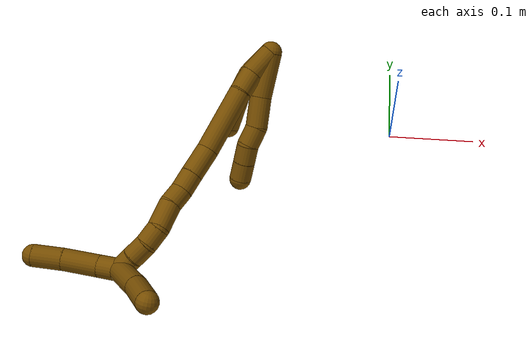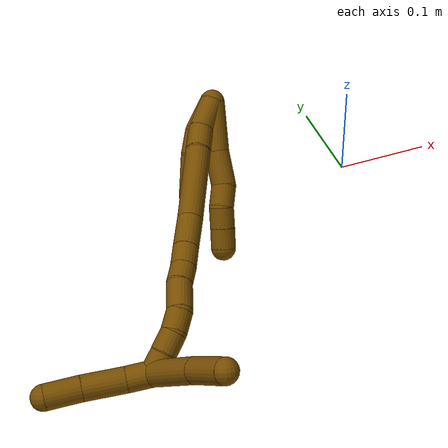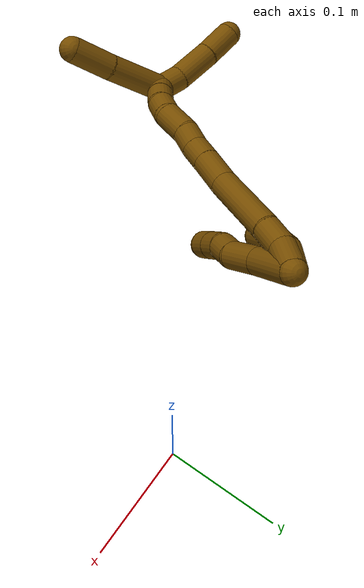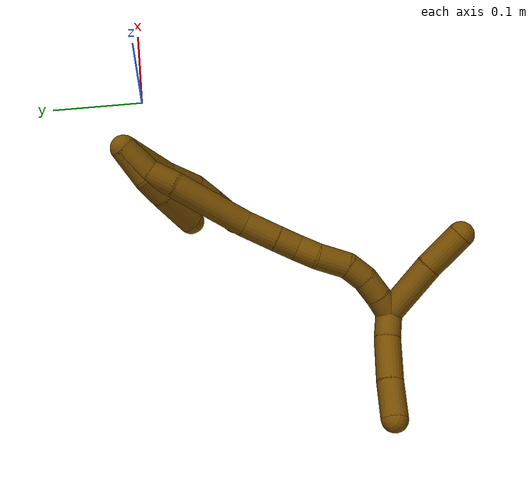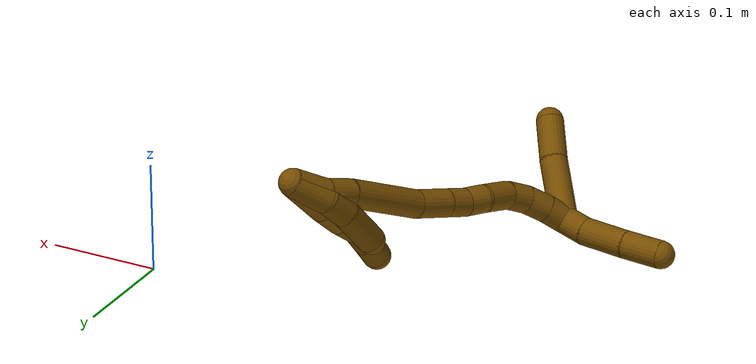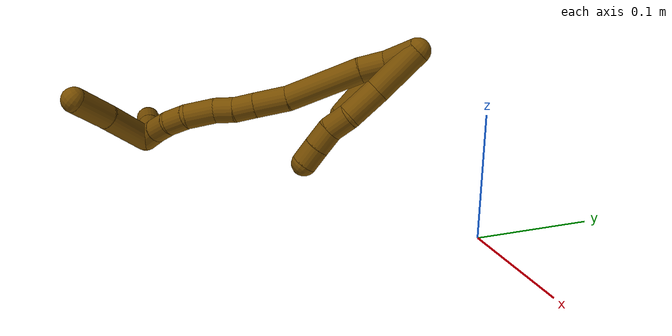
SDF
<sdf version="1.7">
 <world name="default">
  <model name="12">
   <static>0</static>
   <link name="12">
    <collision name="collision-cylinder-e_1_2_8">
     <pose>-0.001415 -0.000154 0.025509 0.006042 -0.055421 -0.000167</pose>
     <geometry><cylinder><radius>0.0125</radius><length>0.051097</length></cylinder></geometry>
     <surface>
      <friction><ode><mu>1.16</mu><mu2>1.16</mu2><slip1>0</slip1><slip2>0</slip2></ode></friction>
      <contact><ode><kp>1e+06</kp><kd>1</kd><max_vel>0</max_vel><min_depth>0.001</min_depth></ode></contact>
     </surface>
    </collision>
    <visual name="visual-cylinder-e_1_2_8">
     <pose>-0.001415 -0.000154 0.025509 0.006042 -0.055421 -0.000167</pose>
     <geometry><cylinder><radius>0.0125</radius><length>0.051097</length></cylinder></geometry>
     <material><ambient>0.466667 0.301961 0 1</ambient></material>
    </visual>
    <collision name="collision-cylinder-e_2_8_9">
     <pose>-0.005591 0.000959 0.06827 -0.073331 -0.158273 0.005818</pose>
     <geometry><cylinder><radius>0.0125</radius><length>0.035035</length></cylinder></geometry>
     <surface>
      <friction><ode><mu>1.16</mu><mu2>1.16</mu2><slip1>0</slip1><slip2>0</slip2></ode></friction>
      <contact><ode><kp>1e+06</kp><kd>1</kd><max_vel>0</max_vel><min_depth>0.001</min_depth></ode></contact>
     </surface>
    </collision>
    <visual name="visual-cylinder-e_2_8_9">
     <pose>-0.005591 0.000959 0.06827 -0.073331 -0.158273 0.005818</pose>
     <geometry><cylinder><radius>0.0125</radius><length>0.035035</length></cylinder></geometry>
     <material><ambient>0.466667 0.301961 0 1</ambient></material>
    </visual>
    <collision name="collision-cylinder-e_3_9_10">
     <pose>-0.009315 -0.000381 0.096357 0.236164 -0.086132 -0.010224</pose>
     <geometry><cylinder><radius>0.0125</radius><length>0.02237</length></cylinder></geometry>
     <surface>
      <friction><ode><mu>1.16</mu><mu2>1.16</mu2><slip1>0</slip1><slip2>0</slip2></ode></friction>
      <contact><ode><kp>1e+06</kp><kd>1</kd><max_vel>0</max_vel><min_depth>0.001</min_depth></ode></contact>
     </surface>
    </collision>
    <visual name="visual-cylinder-e_3_9_10">
     <pose>-0.009315 -0.000381 0.096357 0.236164 -0.086132 -0.010224</pose>
     <geometry><cylinder><radius>0.0125</radius><length>0.02237</length></cylinder></geometry>
     <material><ambient>0.466667 0.301961 0 1</ambient></material>
    </visual>
    <collision name="collision-cylinder-e_4_10_11">
     <pose>-0.009389 -0.002794 0.117626 -0.018575 0.084896 -0.000789</pose>
     <geometry><cylinder><radius>0.0125</radius><length>0.02095</length></cylinder></geometry>
     <surface>
      <friction><ode><mu>1.16</mu><mu2>1.16</mu2><slip1>0</slip1><slip2>0</slip2></ode></friction>
      <contact><ode><kp>1e+06</kp><kd>1</kd><max_vel>0</max_vel><min_depth>0.001</min_depth></ode></contact>
     </surface>
    </collision>
    <visual name="visual-cylinder-e_4_10_11">
     <pose>-0.009389 -0.002794 0.117626 -0.018575 0.084896 -0.000789</pose>
     <geometry><cylinder><radius>0.0125</radius><length>0.02095</length></cylinder></geometry>
     <material><ambient>0.466667 0.301961 0 1</ambient></material>
    </visual>
    <collision name="collision-cylinder-e_5_11_6">
     <pose>-0.007417 -0.002456 0.138277 -0.014154 0.10565 -0.000748</pose>
     <geometry><cylinder><radius>0.0125</radius><length>0.020548</length></cylinder></geometry>
     <surface>
      <friction><ode><mu>1.16</mu><mu2>1.16</mu2><slip1>0</slip1><slip2>0</slip2></ode></friction>
      <contact><ode><kp>1e+06</kp><kd>1</kd><max_vel>0</max_vel><min_depth>0.001</min_depth></ode></contact>
     </surface>
    </collision>
    <visual name="visual-cylinder-e_5_11_6">
     <pose>-0.007417 -0.002456 0.138277 -0.014154 0.10565 -0.000748</pose>
     <geometry><cylinder><radius>0.0125</radius><length>0.020548</length></cylinder></geometry>
     <material><ambient>0.466667 0.301961 0 1</ambient></material>
    </visual>
    <collision name="collision-cylinder-e_1_2_12">
     <pose>0.000661 -0.009009 0.014698 0.54986 0.038297 0.010804</pose>
     <geometry><cylinder><radius>0.0125</radius><length>0.034504</length></cylinder></geometry>
     <surface>
      <friction><ode><mu>1.16</mu><mu2>1.16</mu2><slip1>0</slip1><slip2>0</slip2></ode></friction>
      <contact><ode><kp>1e+06</kp><kd>1</kd><max_vel>0</max_vel><min_depth>0.001</min_depth></ode></contact>
     </surface>
    </collision>
    <visual name="visual-cylinder-e_1_2_12">
     <pose>0.000661 -0.009009 0.014698 0.54986 0.038297 0.010804</pose>
     <geometry><cylinder><radius>0.0125</radius><length>0.034504</length></cylinder></geometry>
     <material><ambient>0.466667 0.301961 0 1</ambient></material>
    </visual>
    <collision name="collision-cylinder-e_2_12_13">
     <pose>0.00197 -0.020949 0.040864 0.25025 0.054748 0.006888</pose>
     <geometry><cylinder><radius>0.0125</radius><length>0.023708</length></cylinder></geometry>
     <surface>
      <friction><ode><mu>1.16</mu><mu2>1.16</mu2><slip1>0</slip1><slip2>0</slip2></ode></friction>
      <contact><ode><kp>1e+06</kp><kd>1</kd><max_vel>0</max_vel><min_depth>0.001</min_depth></ode></contact>
     </surface>
    </collision>
    <visual name="visual-cylinder-e_2_12_13">
     <pose>0.00197 -0.020949 0.040864 0.25025 0.054748 0.006888</pose>
     <geometry><cylinder><radius>0.0125</radius><length>0.023708</length></cylinder></geometry>
     <material><ambient>0.466667 0.301961 0 1</ambient></material>
    </visual>
    <collision name="collision-cylinder-e_3_13_5">
     <pose>0.004545 -0.025865 0.073042 0.095555 0.092338 0.004418</pose>
     <geometry><cylinder><radius>0.0125</radius><length>0.041787</length></cylinder></geometry>
     <surface>
      <friction><ode><mu>1.16</mu><mu2>1.16</mu2><slip1>0</slip1><slip2>0</slip2></ode></friction>
      <contact><ode><kp>1e+06</kp><kd>1</kd><max_vel>0</max_vel><min_depth>0.001</min_depth></ode></contact>
     </surface>
    </collision>
    <visual name="visual-cylinder-e_3_13_5">
     <pose>0.004545 -0.025865 0.073042 0.095555 0.092338 0.004418</pose>
     <geometry><cylinder><radius>0.0125</radius><length>0.041787</length></cylinder></geometry>
     <material><ambient>0.466667 0.301961 0 1</ambient></material>
    </visual>
    <collision name="collision-cylinder-e_1_2_14">
     <pose>-0.002028 -0.008101 0.013602 0.537132 -0.127416 -0.035111</pose>
     <geometry><cylinder><radius>0.0125</radius><length>0.031922</length></cylinder></geometry>
     <surface>
      <friction><ode><mu>1.16</mu><mu2>1.16</mu2><slip1>0</slip1><slip2>0</slip2></ode></friction>
      <contact><ode><kp>1e+06</kp><kd>1</kd><max_vel>0</max_vel><min_depth>0.001</min_depth></ode></contact>
     </surface>
    </collision>
    <visual name="visual-cylinder-e_1_2_14">
     <pose>-0.002028 -0.008101 0.013602 0.537132 -0.127416 -0.035111</pose>
     <geometry><cylinder><radius>0.0125</radius><length>0.031922</length></cylinder></geometry>
     <material><ambient>0.466667 0.301961 0 1</ambient></material>
    </visual>
    <collision name="collision-cylinder-e_2_14_15">
     <pose>-0.009545 -0.020822 0.03806 0.402388 -0.435442 -0.090179</pose>
     <geometry><cylinder><radius>0.0125</radius><length>0.026025</length></cylinder></geometry>
     <surface>
      <friction><ode><mu>1.16</mu><mu2>1.16</mu2><slip1>0</slip1><slip2>0</slip2></ode></friction>
      <contact><ode><kp>1e+06</kp><kd>1</kd><max_vel>0</max_vel><min_depth>0.001</min_depth></ode></contact>
     </surface>
    </collision>
    <visual name="visual-cylinder-e_2_14_15">
     <pose>-0.009545 -0.020822 0.03806 0.402388 -0.435442 -0.090179</pose>
     <geometry><cylinder><radius>0.0125</radius><length>0.026025</length></cylinder></geometry>
     <material><ambient>0.466667 0.301961 0 1</ambient></material>
    </visual>
    <collision name="collision-cylinder-e_3_15_16">
     <pose>-0.026897 -0.037209 0.08251 0.336924 -0.321702 -0.055176</pose>
     <geometry><cylinder><radius>0.0125</radius><length>0.07504</length></cylinder></geometry>
     <surface>
      <friction><ode><mu>1.16</mu><mu2>1.16</mu2><slip1>0</slip1><slip2>0</slip2></ode></friction>
      <contact><ode><kp>1e+06</kp><kd>1</kd><max_vel>0</max_vel><min_depth>0.001</min_depth></ode></contact>
     </surface>
    </collision>
    <visual name="visual-cylinder-e_3_15_16">
     <pose>-0.026897 -0.037209 0.08251 0.336924 -0.321702 -0.055176</pose>
     <geometry><cylinder><radius>0.0125</radius><length>0.07504</length></cylinder></geometry>
     <material><ambient>0.466667 0.301961 0 1</ambient></material>
    </visual>
    <collision name="collision-cylinder-e_4_16_17">
     <pose>-0.046134 -0.055229 0.129679 0.431597 -0.458366 -0.102187</pose>
     <geometry><cylinder><radius>0.0125</radius><length>0.033331</length></cylinder></geometry>
     <surface>
      <friction><ode><mu>1.16</mu><mu2>1.16</mu2><slip1>0</slip1><slip2>0</slip2></ode></friction>
      <contact><ode><kp>1e+06</kp><kd>1</kd><max_vel>0</max_vel><min_depth>0.001</min_depth></ode></contact>
     </surface>
    </collision>
    <visual name="visual-cylinder-e_4_16_17">
     <pose>-0.046134 -0.055229 0.129679 0.431597 -0.458366 -0.102187</pose>
     <geometry><cylinder><radius>0.0125</radius><length>0.033331</length></cylinder></geometry>
     <material><ambient>0.466667 0.301961 0 1</ambient></material>
    </visual>
    <collision name="collision-cylinder-e_5_17_18">
     <pose>-0.05826 -0.065313 0.152063 0.410316 -0.459278 -0.097209</pose>
     <geometry><cylinder><radius>0.0125</radius><length>0.021436</length></cylinder></geometry>
     <surface>
      <friction><ode><mu>1.16</mu><mu2>1.16</mu2><slip1>0</slip1><slip2>0</slip2></ode></friction>
      <contact><ode><kp>1e+06</kp><kd>1</kd><max_vel>0</max_vel><min_depth>0.001</min_depth></ode></contact>
     </surface>
    </collision>
    <visual name="visual-cylinder-e_5_17_18">
     <pose>-0.05826 -0.065313 0.152063 0.410316 -0.459278 -0.097209</pose>
     <geometry><cylinder><radius>0.0125</radius><length>0.021436</length></cylinder></geometry>
     <material><ambient>0.466667 0.301961 0 1</ambient></material>
    </visual>
    <collision name="collision-cylinder-e_6_18_19">
     <pose>-0.068414 -0.073799 0.168025 0.576865 -0.564454 -0.171647</pose>
     <geometry><cylinder><radius>0.0125</radius><length>0.020198</length></cylinder></geometry>
     <surface>
      <friction><ode><mu>1.16</mu><mu2>1.16</mu2><slip1>0</slip1><slip2>0</slip2></ode></friction>
      <contact><ode><kp>1e+06</kp><kd>1</kd><max_vel>0</max_vel><min_depth>0.001</min_depth></ode></contact>
     </surface>
    </collision>
    <visual name="visual-cylinder-e_6_18_19">
     <pose>-0.068414 -0.073799 0.168025 0.576865 -0.564454 -0.171647</pose>
     <geometry><cylinder><radius>0.0125</radius><length>0.020198</length></cylinder></geometry>
     <material><ambient>0.466667 0.301961 0 1</ambient></material>
    </visual>
    <collision name="collision-cylinder-e_7_19_20">
     <pose>-0.081632 -0.082331 0.18721 0.311861 -0.553724 -0.089284</pose>
     <geometry><cylinder><radius>0.0125</radius><length>0.029728</length></cylinder></geometry>
     <surface>
      <friction><ode><mu>1.16</mu><mu2>1.16</mu2><slip1>0</slip1><slip2>0</slip2></ode></friction>
      <contact><ode><kp>1e+06</kp><kd>1</kd><max_vel>0</max_vel><min_depth>0.001</min_depth></ode></contact>
     </surface>
    </collision>
    <visual name="visual-cylinder-e_7_19_20">
     <pose>-0.081632 -0.082331 0.18721 0.311861 -0.553724 -0.089284</pose>
     <geometry><cylinder><radius>0.0125</radius><length>0.029728</length></cylinder></geometry>
     <material><ambient>0.466667 0.301961 0 1</ambient></material>
    </visual>
    <collision name="collision-cylinder-e_8_20_21">
     <pose>-0.091939 -0.09081 0.208317 0.469157 -0.24007 -0.057633</pose>
     <geometry><cylinder><radius>0.0125</radius><length>0.020947</length></cylinder></geometry>
     <surface>
      <friction><ode><mu>1.16</mu><mu2>1.16</mu2><slip1>0</slip1><slip2>0</slip2></ode></friction>
      <contact><ode><kp>1e+06</kp><kd>1</kd><max_vel>0</max_vel><min_depth>0.001</min_depth></ode></contact>
     </surface>
    </collision>
    <visual name="visual-cylinder-e_8_20_21">
     <pose>-0.091939 -0.09081 0.208317 0.469157 -0.24007 -0.057633</pose>
     <geometry><cylinder><radius>0.0125</radius><length>0.020947</length></cylinder></geometry>
     <material><ambient>0.466667 0.301961 0 1</ambient></material>
    </visual>
    <collision name="collision-cylinder-e_9_21_22">
     <pose>-0.09443 -0.101053 0.226194 0.570071 -4.2e-05 -1.2e-05</pose>
     <geometry><cylinder><radius>0.0125</radius><length>0.020913</length></cylinder></geometry>
     <surface>
      <friction><ode><mu>1.16</mu><mu2>1.16</mu2><slip1>0</slip1><slip2>0</slip2></ode></friction>
      <contact><ode><kp>1e+06</kp><kd>1</kd><max_vel>0</max_vel><min_depth>0.001</min_depth></ode></contact>
     </surface>
    </collision>
    <visual name="visual-cylinder-e_9_21_22">
     <pose>-0.09443 -0.101053 0.226194 0.570071 -4.2e-05 -1.2e-05</pose>
     <geometry><cylinder><radius>0.0125</radius><length>0.020913</length></cylinder></geometry>
     <material><ambient>0.466667 0.301961 0 1</ambient></material>
    </visual>
    <collision name="collision-cylinder-e_10_22_1">
     <pose>-0.093448 -0.11202 0.243677 0.550121 0.096144 0.027152</pose>
     <geometry><cylinder><radius>0.0125</radius><length>0.02046</length></cylinder></geometry>
     <surface>
      <friction><ode><mu>1.16</mu><mu2>1.16</mu2><slip1>0</slip1><slip2>0</slip2></ode></friction>
      <contact><ode><kp>1e+06</kp><kd>1</kd><max_vel>0</max_vel><min_depth>0.001</min_depth></ode></contact>
     </surface>
    </collision>
    <visual name="visual-cylinder-e_10_22_1">
     <pose>-0.093448 -0.11202 0.243677 0.550121 0.096144 0.027152</pose>
     <geometry><cylinder><radius>0.0125</radius><length>0.02046</length></cylinder></geometry>
     <material><ambient>0.466667 0.301961 0 1</ambient></material>
    </visual>
    <collision name="collision-cylinder-e_1_1_23">
     <pose>-0.087198 -0.128098 0.254249 1.39665 0.449532 0.379225</pose>
     <geometry><cylinder><radius>0.0125</radius><length>0.024249</length></cylinder></geometry>
     <surface>
      <friction><ode><mu>1.16</mu><mu2>1.16</mu2><slip1>0</slip1><slip2>0</slip2></ode></friction>
      <contact><ode><kp>1e+06</kp><kd>1</kd><max_vel>0</max_vel><min_depth>0.001</min_depth></ode></contact>
     </surface>
    </collision>
    <visual name="visual-cylinder-e_1_1_23">
     <pose>-0.087198 -0.128098 0.254249 1.39665 0.449532 0.379225</pose>
     <geometry><cylinder><radius>0.0125</radius><length>0.024249</length></cylinder></geometry>
     <material><ambient>0.466667 0.301961 0 1</ambient></material>
    </visual>
    <collision name="collision-cylinder-e_2_23_24">
     <pose>-0.076311 -0.158704 0.258156 1.46968 0.274475 0.24832</pose>
     <geometry><cylinder><radius>0.0125</radius><length>0.041457</length></cylinder></geometry>
     <surface>
      <friction><ode><mu>1.16</mu><mu2>1.16</mu2><slip1>0</slip1><slip2>0</slip2></ode></friction>
      <contact><ode><kp>1e+06</kp><kd>1</kd><max_vel>0</max_vel><min_depth>0.001</min_depth></ode></contact>
     </surface>
    </collision>
    <visual name="visual-cylinder-e_2_23_24">
     <pose>-0.076311 -0.158704 0.258156 1.46968 0.274475 0.24832</pose>
     <geometry><cylinder><radius>0.0125</radius><length>0.041457</length></cylinder></geometry>
     <material><ambient>0.466667 0.301961 0 1</ambient></material>
    </visual>
    <collision name="collision-cylinder-e_3_24_4">
     <pose>-0.066793 -0.195082 0.262549 1.42782 0.229409 0.198965</pose>
     <geometry><cylinder><radius>0.0125</radius><length>0.034294</length></cylinder></geometry>
     <surface>
      <friction><ode><mu>1.16</mu><mu2>1.16</mu2><slip1>0</slip1><slip2>0</slip2></ode></friction>
      <contact><ode><kp>1e+06</kp><kd>1</kd><max_vel>0</max_vel><min_depth>0.001</min_depth></ode></contact>
     </surface>
    </collision>
    <visual name="visual-cylinder-e_3_24_4">
     <pose>-0.066793 -0.195082 0.262549 1.42782 0.229409 0.198965</pose>
     <geometry><cylinder><radius>0.0125</radius><length>0.034294</length></cylinder></geometry>
     <material><ambient>0.466667 0.301961 0 1</ambient></material>
    </visual>
    <collision name="collision-cylinder-e_1_1_25">
     <pose>-0.120108 -0.107662 0.249358 -1.87116 -1.21934 1.51688</pose>
     <geometry><cylinder><radius>0.0125</radius><length>0.058882</length></cylinder></geometry>
     <surface>
      <friction><ode><mu>1.16</mu><mu2>1.16</mu2><slip1>0</slip1><slip2>0</slip2></ode></friction>
      <contact><ode><kp>1e+06</kp><kd>1</kd><max_vel>0</max_vel><min_depth>0.001</min_depth></ode></contact>
     </surface>
    </collision>
    <visual name="visual-cylinder-e_1_1_25">
     <pose>-0.120108 -0.107662 0.249358 -1.87116 -1.21934 1.51688</pose>
     <geometry><cylinder><radius>0.0125</radius><length>0.058882</length></cylinder></geometry>
     <material><ambient>0.466667 0.301961 0 1</ambient></material>
    </visual>
    <collision name="collision-cylinder-e_2_25_3">
     <pose>-0.167466 -0.092229 0.24544 -1.72934 -1.2836 1.43917</pose>
     <geometry><cylinder><radius>0.0125</radius><length>0.041118</length></cylinder></geometry>
     <surface>
      <friction><ode><mu>1.16</mu><mu2>1.16</mu2><slip1>0</slip1><slip2>0</slip2></ode></friction>
      <contact><ode><kp>1e+06</kp><kd>1</kd><max_vel>0</max_vel><min_depth>0.001</min_depth></ode></contact>
     </surface>
    </collision>
    <visual name="visual-cylinder-e_2_25_3">
     <pose>-0.167466 -0.092229 0.24544 -1.72934 -1.2836 1.43917</pose>
     <geometry><cylinder><radius>0.0125</radius><length>0.041118</length></cylinder></geometry>
     <material><ambient>0.466667 0.301961 0 1</ambient></material>
    </visual>
    <collision name="collision-sphere-3">
     <pose>-0.187183 -0.086479 0.244521 0 -0 0</pose>
     <geometry><sphere><radius>0.0125</radius></sphere></geometry>
     <surface>
      <friction><ode><mu>1.16</mu><mu2>1.16</mu2><slip1>0</slip1><slip2>0</slip2></ode></friction>
      <contact><ode><kp>1e+06</kp><kd>1</kd><max_vel>0</max_vel><min_depth>0.001</min_depth></ode></contact>
     </surface>
    </collision>
    <visual name="visual-sphere-3">
     <pose>-0.187183 -0.086479 0.244521 0 -0 0</pose>
     <geometry><sphere><radius>0.0125</radius></sphere></geometry>
     <material><ambient>0.466667 0.301961 0 1</ambient></material>
    </visual>
    <collision name="collision-sphere-25">
     <pose>-0.147749 -0.09798 0.24636 0 -0 0</pose>
     <geometry><sphere><radius>0.0125</radius></sphere></geometry>
     <surface>
      <friction><ode><mu>1.16</mu><mu2>1.16</mu2><slip1>0</slip1><slip2>0</slip2></ode></friction>
      <contact><ode><kp>1e+06</kp><kd>1</kd><max_vel>0</max_vel><min_depth>0.001</min_depth></ode></contact>
     </surface>
    </collision>
    <visual name="visual-sphere-25">
     <pose>-0.147749 -0.09798 0.24636 0 -0 0</pose>
     <geometry><sphere><radius>0.0125</radius></sphere></geometry>
     <material><ambient>0.466667 0.301961 0 1</ambient></material>
    </visual>
    <collision name="collision-sphere-4">
     <pose>-0.062894 -0.211609 0.264928 0 -0 0</pose>
     <geometry><sphere><radius>0.0125</radius></sphere></geometry>
     <surface>
      <friction><ode><mu>1.16</mu><mu2>1.16</mu2><slip1>0</slip1><slip2>0</slip2></ode></friction>
      <contact><ode><kp>1e+06</kp><kd>1</kd><max_vel>0</max_vel><min_depth>0.001</min_depth></ode></contact>
     </surface>
    </collision>
    <visual name="visual-sphere-4">
     <pose>-0.062894 -0.211609 0.264928 0 -0 0</pose>
     <geometry><sphere><radius>0.0125</radius></sphere></geometry>
     <material><ambient>0.466667 0.301961 0 1</ambient></material>
    </visual>
    <collision name="collision-sphere-24">
     <pose>-0.070692 -0.178554 0.26017 0 -0 0</pose>
     <geometry><sphere><radius>0.0125</radius></sphere></geometry>
     <surface>
      <friction><ode><mu>1.16</mu><mu2>1.16</mu2><slip1>0</slip1><slip2>0</slip2></ode></friction>
      <contact><ode><kp>1e+06</kp><kd>1</kd><max_vel>0</max_vel><min_depth>0.001</min_depth></ode></contact>
     </surface>
    </collision>
    <visual name="visual-sphere-24">
     <pose>-0.070692 -0.178554 0.26017 0 -0 0</pose>
     <geometry><sphere><radius>0.0125</radius></sphere></geometry>
     <material><ambient>0.466667 0.301961 0 1</ambient></material>
    </visual>
    <collision name="collision-sphere-23">
     <pose>-0.081929 -0.138853 0.256141 0 -0 0</pose>
     <geometry><sphere><radius>0.0125</radius></sphere></geometry>
     <surface>
      <friction><ode><mu>1.16</mu><mu2>1.16</mu2><slip1>0</slip1><slip2>0</slip2></ode></friction>
      <contact><ode><kp>1e+06</kp><kd>1</kd><max_vel>0</max_vel><min_depth>0.001</min_depth></ode></contact>
     </surface>
    </collision>
    <visual name="visual-sphere-23">
     <pose>-0.081929 -0.138853 0.256141 0 -0 0</pose>
     <geometry><sphere><radius>0.0125</radius></sphere></geometry>
     <material><ambient>0.466667 0.301961 0 1</ambient></material>
    </visual>
    <collision name="collision-sphere-1">
     <pose>-0.092466 -0.117343 0.252357 0 -0 0</pose>
     <geometry><sphere><radius>0.0125</radius></sphere></geometry>
     <surface>
      <friction><ode><mu>1.16</mu><mu2>1.16</mu2><slip1>0</slip1><slip2>0</slip2></ode></friction>
      <contact><ode><kp>1e+06</kp><kd>1</kd><max_vel>0</max_vel><min_depth>0.001</min_depth></ode></contact>
     </surface>
    </collision>
    <visual name="visual-sphere-1">
     <pose>-0.092466 -0.117343 0.252357 0 -0 0</pose>
     <geometry><sphere><radius>0.0125</radius></sphere></geometry>
     <material><ambient>0.466667 0.301961 0 1</ambient></material>
    </visual>
    <collision name="collision-sphere-22">
     <pose>-0.09443 -0.106697 0.234997 0 -0 0</pose>
     <geometry><sphere><radius>0.0125</radius></sphere></geometry>
     <surface>
      <friction><ode><mu>1.16</mu><mu2>1.16</mu2><slip1>0</slip1><slip2>0</slip2></ode></friction>
      <contact><ode><kp>1e+06</kp><kd>1</kd><max_vel>0</max_vel><min_depth>0.001</min_depth></ode></contact>
     </surface>
    </collision>
    <visual name="visual-sphere-22">
     <pose>-0.09443 -0.106697 0.234997 0 -0 0</pose>
     <geometry><sphere><radius>0.0125</radius></sphere></geometry>
     <material><ambient>0.466667 0.301961 0 1</ambient></material>
    </visual>
    <collision name="collision-sphere-21">
     <pose>-0.094429 -0.09541 0.21739 0 -0 0</pose>
     <geometry><sphere><radius>0.0125</radius></sphere></geometry>
     <surface>
      <friction><ode><mu>1.16</mu><mu2>1.16</mu2><slip1>0</slip1><slip2>0</slip2></ode></friction>
      <contact><ode><kp>1e+06</kp><kd>1</kd><max_vel>0</max_vel><min_depth>0.001</min_depth></ode></contact>
     </surface>
    </collision>
    <visual name="visual-sphere-21">
     <pose>-0.094429 -0.09541 0.21739 0 -0 0</pose>
     <geometry><sphere><radius>0.0125</radius></sphere></geometry>
     <material><ambient>0.466667 0.301961 0 1</ambient></material>
    </visual>
    <collision name="collision-sphere-6">
     <pose>-0.006334 -0.002311 0.148493 0 -0 0</pose>
     <geometry><sphere><radius>0.0125</radius></sphere></geometry>
     <surface>
      <friction><ode><mu>1.16</mu><mu2>1.16</mu2><slip1>0</slip1><slip2>0</slip2></ode></friction>
      <contact><ode><kp>1e+06</kp><kd>1</kd><max_vel>0</max_vel><min_depth>0.001</min_depth></ode></contact>
     </surface>
    </collision>
    <visual name="visual-sphere-6">
     <pose>-0.006334 -0.002311 0.148493 0 -0 0</pose>
     <geometry><sphere><radius>0.0125</radius></sphere></geometry>
     <material><ambient>0.466667 0.301961 0 1</ambient></material>
    </visual>
    <collision name="collision-sphere-11">
     <pose>-0.0085 -0.0026 0.128061 0 -0 0</pose>
     <geometry><sphere><radius>0.0125</radius></sphere></geometry>
     <surface>
      <friction><ode><mu>1.16</mu><mu2>1.16</mu2><slip1>0</slip1><slip2>0</slip2></ode></friction>
      <contact><ode><kp>1e+06</kp><kd>1</kd><max_vel>0</max_vel><min_depth>0.001</min_depth></ode></contact>
     </surface>
    </collision>
    <visual name="visual-sphere-11">
     <pose>-0.0085 -0.0026 0.128061 0 -0 0</pose>
     <geometry><sphere><radius>0.0125</radius></sphere></geometry>
     <material><ambient>0.466667 0.301961 0 1</ambient></material>
    </visual>
    <collision name="collision-sphere-10">
     <pose>-0.010277 -0.002988 0.107191 0 -0 0</pose>
     <geometry><sphere><radius>0.0125</radius></sphere></geometry>
     <surface>
      <friction><ode><mu>1.16</mu><mu2>1.16</mu2><slip1>0</slip1><slip2>0</slip2></ode></friction>
      <contact><ode><kp>1e+06</kp><kd>1</kd><max_vel>0</max_vel><min_depth>0.001</min_depth></ode></contact>
     </surface>
    </collision>
    <visual name="visual-sphere-10">
     <pose>-0.010277 -0.002988 0.107191 0 -0 0</pose>
     <geometry><sphere><radius>0.0125</radius></sphere></geometry>
     <material><ambient>0.466667 0.301961 0 1</ambient></material>
    </visual>
    <collision name="collision-sphere-9">
     <pose>-0.008352 0.002227 0.085522 0 -0 0</pose>
     <geometry><sphere><radius>0.0125</radius></sphere></geometry>
     <surface>
      <friction><ode><mu>1.16</mu><mu2>1.16</mu2><slip1>0</slip1><slip2>0</slip2></ode></friction>
      <contact><ode><kp>1e+06</kp><kd>1</kd><max_vel>0</max_vel><min_depth>0.001</min_depth></ode></contact>
     </surface>
    </collision>
    <visual name="visual-sphere-9">
     <pose>-0.008352 0.002227 0.085522 0 -0 0</pose>
     <geometry><sphere><radius>0.0125</radius></sphere></geometry>
     <material><ambient>0.466667 0.301961 0 1</ambient></material>
    </visual>
    <collision name="collision-sphere-2">
     <geometry><sphere><radius>0.0125</radius></sphere></geometry>
     <surface>
      <friction><ode><mu>1.16</mu><mu2>1.16</mu2><slip1>0</slip1><slip2>0</slip2></ode></friction>
      <contact><ode><kp>1e+06</kp><kd>1</kd><max_vel>0</max_vel><min_depth>0.001</min_depth></ode></contact>
     </surface>
    </collision>
    <visual name="visual-sphere-2">
     <geometry><sphere><radius>0.0125</radius></sphere></geometry>
     <material><ambient>0.466667 0.301961 0 1</ambient></material>
    </visual>
    <collision name="collision-sphere-19">
     <pose>-0.073816 -0.078452 0.175176 0 -0 0</pose>
     <geometry><sphere><radius>0.0125</radius></sphere></geometry>
     <surface>
      <friction><ode><mu>1.16</mu><mu2>1.16</mu2><slip1>0</slip1><slip2>0</slip2></ode></friction>
      <contact><ode><kp>1e+06</kp><kd>1</kd><max_vel>0</max_vel><min_depth>0.001</min_depth></ode></contact>
     </surface>
    </collision>
    <visual name="visual-sphere-19">
     <pose>-0.073816 -0.078452 0.175176 0 -0 0</pose>
     <geometry><sphere><radius>0.0125</radius></sphere></geometry>
     <material><ambient>0.466667 0.301961 0 1</ambient></material>
    </visual>
    <collision name="collision-sphere-8">
     <pose>-0.00283 -0.000308 0.051018 0 -0 0</pose>
     <geometry><sphere><radius>0.0125</radius></sphere></geometry>
     <surface>
      <friction><ode><mu>1.16</mu><mu2>1.16</mu2><slip1>0</slip1><slip2>0</slip2></ode></friction>
      <contact><ode><kp>1e+06</kp><kd>1</kd><max_vel>0</max_vel><min_depth>0.001</min_depth></ode></contact>
     </surface>
    </collision>
    <visual name="visual-sphere-8">
     <pose>-0.00283 -0.000308 0.051018 0 -0 0</pose>
     <geometry><sphere><radius>0.0125</radius></sphere></geometry>
     <material><ambient>0.466667 0.301961 0 1</ambient></material>
    </visual>
    <collision name="collision-sphere-12">
     <pose>0.001321 -0.018018 0.029397 0 -0 0</pose>
     <geometry><sphere><radius>0.0125</radius></sphere></geometry>
     <surface>
      <friction><ode><mu>1.16</mu><mu2>1.16</mu2><slip1>0</slip1><slip2>0</slip2></ode></friction>
      <contact><ode><kp>1e+06</kp><kd>1</kd><max_vel>0</max_vel><min_depth>0.001</min_depth></ode></contact>
     </surface>
    </collision>
    <visual name="visual-sphere-12">
     <pose>0.001321 -0.018018 0.029397 0 -0 0</pose>
     <geometry><sphere><radius>0.0125</radius></sphere></geometry>
     <material><ambient>0.466667 0.301961 0 1</ambient></material>
    </visual>
    <collision name="collision-sphere-13">
     <pose>0.002618 -0.02388 0.052332 0 -0 0</pose>
     <geometry><sphere><radius>0.0125</radius></sphere></geometry>
     <surface>
      <friction><ode><mu>1.16</mu><mu2>1.16</mu2><slip1>0</slip1><slip2>0</slip2></ode></friction>
      <contact><ode><kp>1e+06</kp><kd>1</kd><max_vel>0</max_vel><min_depth>0.001</min_depth></ode></contact>
     </surface>
    </collision>
    <visual name="visual-sphere-13">
     <pose>0.002618 -0.02388 0.052332 0 -0 0</pose>
     <geometry><sphere><radius>0.0125</radius></sphere></geometry>
     <material><ambient>0.466667 0.301961 0 1</ambient></material>
    </visual>
    <collision name="collision-sphere-5">
     <pose>0.006472 -0.02785 0.093752 0 -0 0</pose>
     <geometry><sphere><radius>0.0125</radius></sphere></geometry>
     <surface>
      <friction><ode><mu>1.16</mu><mu2>1.16</mu2><slip1>0</slip1><slip2>0</slip2></ode></friction>
      <contact><ode><kp>1e+06</kp><kd>1</kd><max_vel>0</max_vel><min_depth>0.001</min_depth></ode></contact>
     </surface>
    </collision>
    <visual name="visual-sphere-5">
     <pose>0.006472 -0.02785 0.093752 0 -0 0</pose>
     <geometry><sphere><radius>0.0125</radius></sphere></geometry>
     <material><ambient>0.466667 0.301961 0 1</ambient></material>
    </visual>
    <collision name="collision-sphere-14">
     <pose>-0.004056 -0.016201 0.027205 0 -0 0</pose>
     <geometry><sphere><radius>0.0125</radius></sphere></geometry>
     <surface>
      <friction><ode><mu>1.16</mu><mu2>1.16</mu2><slip1>0</slip1><slip2>0</slip2></ode></friction>
      <contact><ode><kp>1e+06</kp><kd>1</kd><max_vel>0</max_vel><min_depth>0.001</min_depth></ode></contact>
     </surface>
    </collision>
    <visual name="visual-sphere-14">
     <pose>-0.004056 -0.016201 0.027205 0 -0 0</pose>
     <geometry><sphere><radius>0.0125</radius></sphere></geometry>
     <material><ambient>0.466667 0.301961 0 1</ambient></material>
    </visual>
    <collision name="collision-sphere-15">
     <pose>-0.015034 -0.025442 0.048916 0 -0 0</pose>
     <geometry><sphere><radius>0.0125</radius></sphere></geometry>
     <surface>
      <friction><ode><mu>1.16</mu><mu2>1.16</mu2><slip1>0</slip1><slip2>0</slip2></ode></friction>
      <contact><ode><kp>1e+06</kp><kd>1</kd><max_vel>0</max_vel><min_depth>0.001</min_depth></ode></contact>
     </surface>
    </collision>
    <visual name="visual-sphere-15">
     <pose>-0.015034 -0.025442 0.048916 0 -0 0</pose>
     <geometry><sphere><radius>0.0125</radius></sphere></geometry>
     <material><ambient>0.466667 0.301961 0 1</ambient></material>
    </visual>
    <collision name="collision-sphere-16">
     <pose>-0.03876 -0.048977 0.116104 0 -0 0</pose>
     <geometry><sphere><radius>0.0125</radius></sphere></geometry>
     <surface>
      <friction><ode><mu>1.16</mu><mu2>1.16</mu2><slip1>0</slip1><slip2>0</slip2></ode></friction>
      <contact><ode><kp>1e+06</kp><kd>1</kd><max_vel>0</max_vel><min_depth>0.001</min_depth></ode></contact>
     </surface>
    </collision>
    <visual name="visual-sphere-16">
     <pose>-0.03876 -0.048977 0.116104 0 -0 0</pose>
     <geometry><sphere><radius>0.0125</radius></sphere></geometry>
     <material><ambient>0.466667 0.301961 0 1</ambient></material>
    </visual>
    <collision name="collision-sphere-17">
     <pose>-0.053509 -0.06148 0.143254 0 -0 0</pose>
     <geometry><sphere><radius>0.0125</radius></sphere></geometry>
     <surface>
      <friction><ode><mu>1.16</mu><mu2>1.16</mu2><slip1>0</slip1><slip2>0</slip2></ode></friction>
      <contact><ode><kp>1e+06</kp><kd>1</kd><max_vel>0</max_vel><min_depth>0.001</min_depth></ode></contact>
     </surface>
    </collision>
    <visual name="visual-sphere-17">
     <pose>-0.053509 -0.06148 0.143254 0 -0 0</pose>
     <geometry><sphere><radius>0.0125</radius></sphere></geometry>
     <material><ambient>0.466667 0.301961 0 1</ambient></material>
    </visual>
    <collision name="collision-sphere-18">
     <pose>-0.063011 -0.069145 0.160873 0 -0 0</pose>
     <geometry><sphere><radius>0.0125</radius></sphere></geometry>
     <surface>
      <friction><ode><mu>1.16</mu><mu2>1.16</mu2><slip1>0</slip1><slip2>0</slip2></ode></friction>
      <contact><ode><kp>1e+06</kp><kd>1</kd><max_vel>0</max_vel><min_depth>0.001</min_depth></ode></contact>
     </surface>
    </collision>
    <visual name="visual-sphere-18">
     <pose>-0.063011 -0.069145 0.160873 0 -0 0</pose>
     <geometry><sphere><radius>0.0125</radius></sphere></geometry>
     <material><ambient>0.466667 0.301961 0 1</ambient></material>
    </visual>
    <collision name="collision-sphere-20">
     <pose>-0.089449 -0.086211 0.199243 0 -0 0</pose>
     <geometry><sphere><radius>0.0125</radius></sphere></geometry>
     <surface>
      <friction><ode><mu>1.16</mu><mu2>1.16</mu2><slip1>0</slip1><slip2>0</slip2></ode></friction>
      <contact><ode><kp>1e+06</kp><kd>1</kd><max_vel>0</max_vel><min_depth>0.001</min_depth></ode></contact>
     </surface>
    </collision>
    <visual name="visual-sphere-20">
     <pose>-0.089449 -0.086211 0.199243 0 -0 0</pose>
     <geometry><sphere><radius>0.0125</radius></sphere></geometry>
     <material><ambient>0.466667 0.301961 0 1</ambient></material>
    </visual>
    <inertial>
     <pose>-0.04911 -0.060756 0.139424 0 -0 0</pose>
     <mass>0.75</mass>
     <inertia>
      <ixx>0.000104</ixx>
      <ixy>0</ixy>
      <ixz>0</ixz>
      <iyy>0.000112</iyy>
      <iyz>0</iyz>
      <izz>0.00011</izz>
     </inertia>
    </inertial>
   </link>
   <pose>-0.145217 0.012661 0.12076 -2.84034 0.675696 1.76878</pose>
  </model>
 </world>
</sdf>
